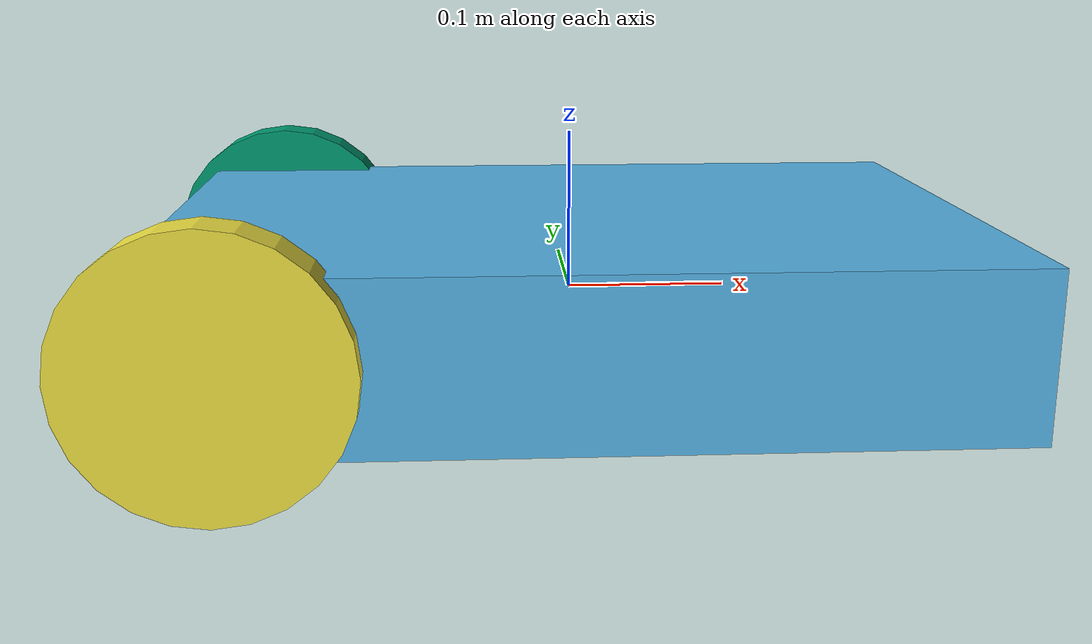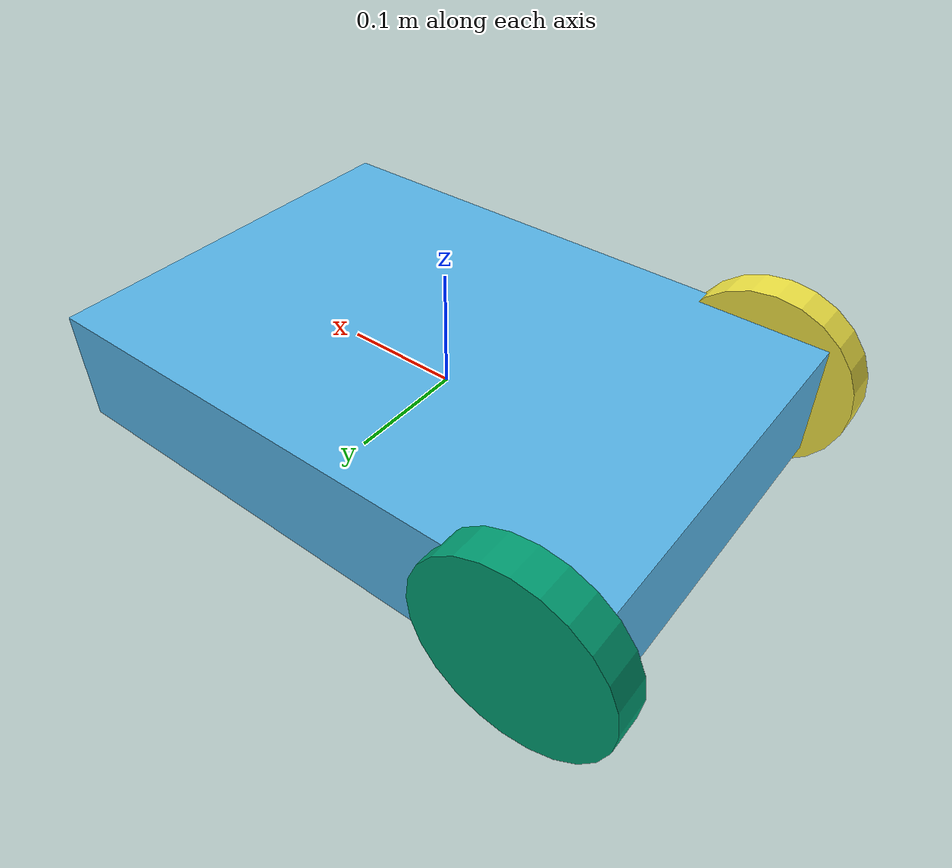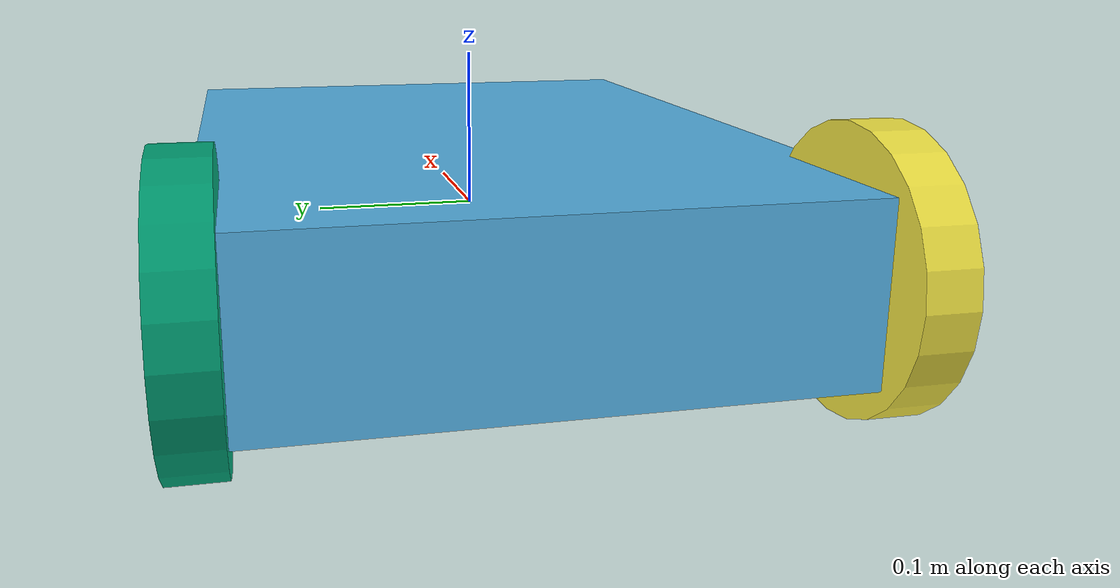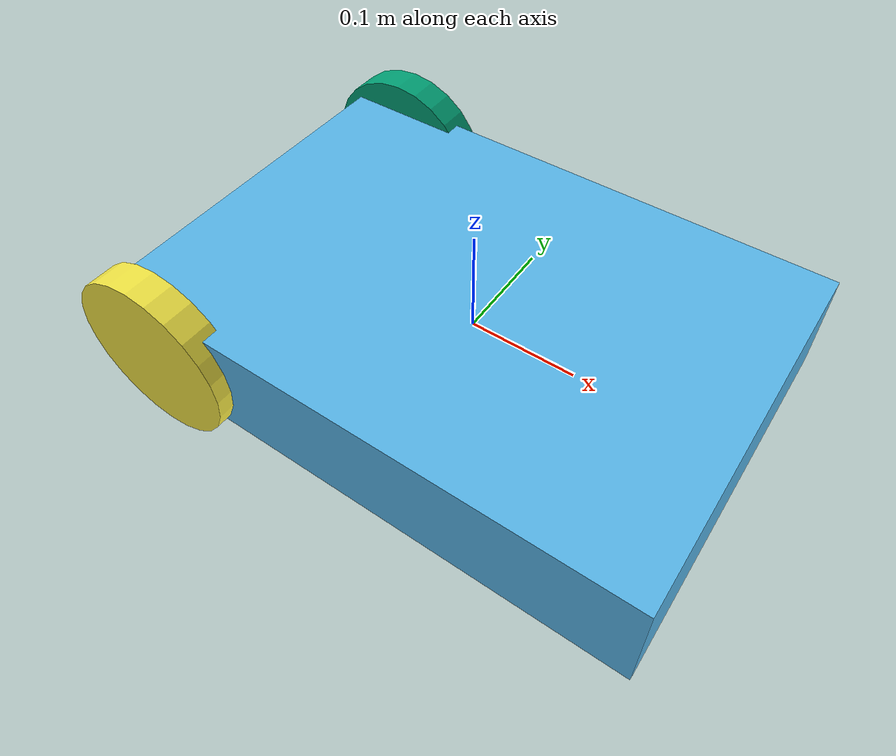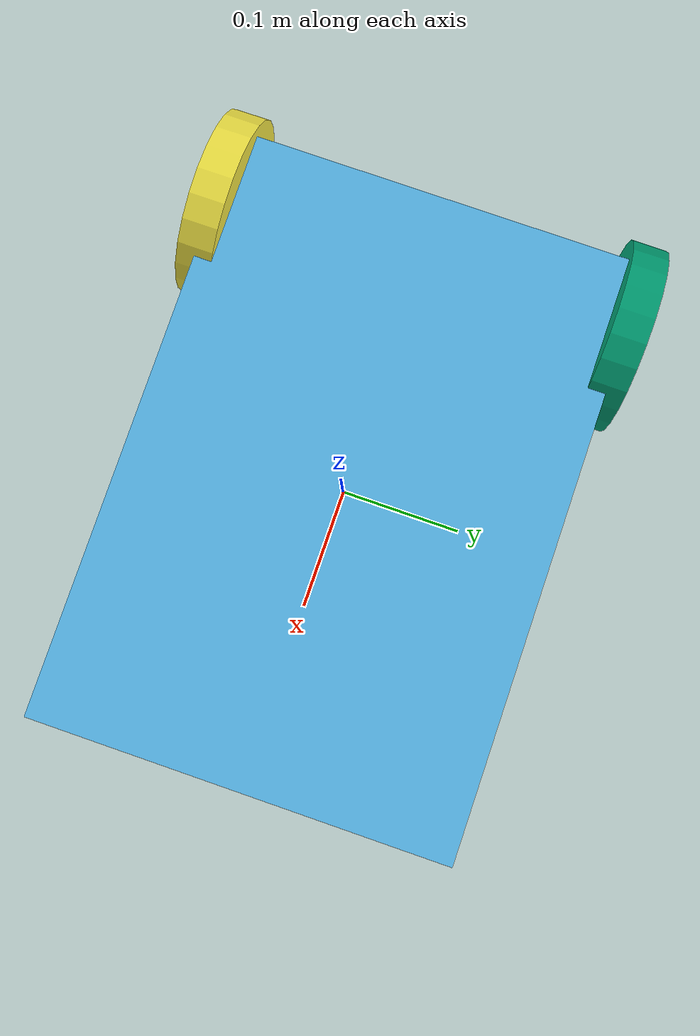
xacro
<?xml version="1.0"?>
<robot name="diff_bot" xmlns:xacro="http://www.ros.org/wiki/xacro">

  <!-- Include component macros -->
  <xacro:include filename="components.xacro"/>
  <xacro:include filename="gazebo_control.xacro"/>

  <!-- Dimensions -->
  <xacro:property name="chassis_length" value="0.5"/>
  <xacro:property name="chassis_width"  value="0.35"/>
  <xacro:property name="chassis_height" value="0.10"/>

  <xacro:property name="wheel_radius"   value="0.08"/>
  <xacro:property name="wheel_width"    value="0.03"/>
  <xacro:property name="caster_radius"  value="0.05"/>

  <!-- Base link -->
  <link name="base_link"/>

  <!-- Chassis -->
  <xacro:chassis
      name="chassis_link"
      length="${chassis_length}"
      width="${chassis_width}"
      height="${chassis_height}"/>

  <joint name="base_to_chassis" type="fixed">
    <parent link="base_link"/>
    <child link="chassis_link"/>
    <origin xyz="0 0 0" rpy="0 0 0"/>
  </joint>

  <!-- Left wheel -->
  <xacro:wheel name="left_wheel_link" radius="${wheel_radius}" width="${wheel_width}"/>
  <joint name="left_wheel_joint" type="continuous">
    <parent link="chassis_link"/>
    <child link="left_wheel_link"/>
    <origin xyz="-0.2 ${chassis_width/2} 0" rpy="0 0 0"/>
    <axis xyz="0 1 0"/>
  </joint>

  <!-- Right wheel -->
  <xacro:wheel name="right_wheel_link" radius="${wheel_radius}" width="${wheel_width}"/>
  <joint name="right_wheel_joint" type="continuous">
    <parent link="chassis_link"/>
    <child link="right_wheel_link"/>
    <origin xyz="-0.2 -${chassis_width/2} 0" rpy="0 0 0"/>
    <axis xyz="0 1 0"/>
  </joint>

  <!-- Caster wheel -->
  <xacro:caster name="caster_link" radius="${caster_radius}"/>
  <joint name="caster_joint" type="fixed">
    <parent link="chassis_link"/>
    <child link="caster_link"/>
    <origin xyz="0.18 0 0" rpy="0 0 0"/>
  </joint>

</robot>

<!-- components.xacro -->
<robot xmlns:xacro="http://www.ros.org/wiki/xacro">

  <!--         CHASSIS MACRO         -->
  <xacro:macro name="chassis" params="name length width height">

    <link name="${name}">
      <visual>
        <geometry>
          <box size="${length} ${width} ${height}"/>
        </geometry>
      </visual>

      <collision>
        <geometry>
          <box size="${length} ${width} ${height}"/>
        </geometry>
      </collision>

      <inertial>
        <mass value="3.0"/>
        <inertia ixx="0.02" iyy="0.02" izz="0.02"
                 ixy="0" ixz="0" iyz="0"/>
      </inertial>
    </link>

  </xacro:macro>

  <!--          WHEEL MACRO          -->
  <xacro:macro name="wheel" params="name radius width">

    <link name="${name}">
      <visual>
        <geometry>
          <cylinder radius="${radius}" length="${width}"/>
        </geometry>
        <origin xyz="0 0 0" rpy="1.5708 0 0"/>
      </visual>

      <collision>
        <geometry>
          <cylinder radius="${radius}" length="${width}"/>
        </geometry>
        <origin xyz="0 0 0" rpy="1.5708 0 0"/>
      </collision>

      <inertial>
        <mass value="0.5"/>
        <inertia ixx="0.001" iyy="0.001" izz="0.001"
                 ixy="0" ixz="0" iyz="0"/>
      </inertial>

    </link>

  </xacro:macro>

  <!--          CASTER MACRO         -->
  <xacro:macro name="caster" params="name radius">

    <link name="${name}">
      <visual>
        <geometry>
          <sphere radius="${radius}"/>
        </geometry>
      </visual>

      <collision>
        <geometry>
          <sphere radius="${radius}"/>
        </geometry>
      </collision>

      <inertial>
        <mass value="0.2"/>
        <inertia ixx="0.0005" iyy="0.0005" izz="0.0005"
                 ixy="0" ixz="0" iyz="0"/>
      </inertial>

      <!-- Caster friction -->
      <gazebo reference="${name}">
        <mu1>0.001</mu1>
        <mu2>0.001</mu2>
      </gazebo>

    </link>

  </xacro:macro>

</robot>
